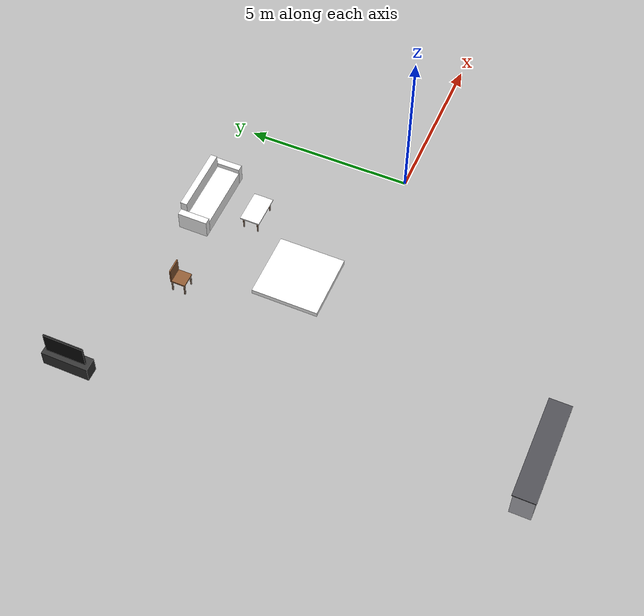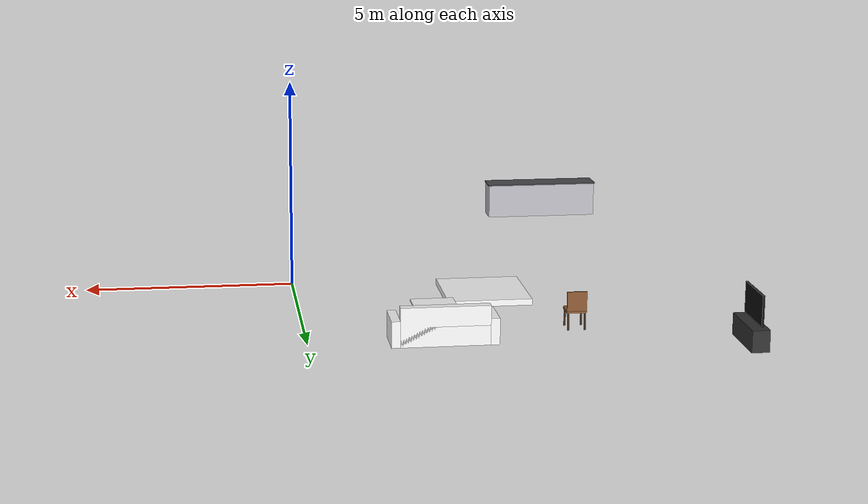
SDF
<sdf version="1.9">
 <world name="indoor_furniture">
  <model name="chair_3">
   <static>true</static>
   <link name="seat">
    <pose>-6.100 4.400 0.425 0 0 0.000</pose>
    <collision name="col"><geometry><box><size>0.450 0.450 0.050</size></box></geometry></collision>
    <visual name="vis">
     <geometry><box><size>0.450 0.450 0.050</size></box></geometry>
     <material>
      <ambient>0.55 0.35 0.2 1</ambient>
      <diffuse>0.55 0.35 0.2 1</diffuse>
      <specular>0.1 0.1 0.1 1</specular>
     </material>
    </visual>
   </link>
   <link name="leg0">
    <pose>-5.910 4.590 0.200 0 0 0.000</pose>
    <collision name="col"><geometry><box><size>0.040 0.040 0.400</size></box></geometry></collision>
    <visual name="vis">
     <geometry><box><size>0.040 0.040 0.400</size></box></geometry>
     <material>
      <ambient>0.25 0.18 0.12 1</ambient>
      <diffuse>0.25 0.18 0.12 1</diffuse>
      <specular>0.1 0.1 0.1 1</specular>
     </material>
    </visual>
   </link>
   <link name="leg1">
    <pose>-6.290 4.590 0.200 0 0 0.000</pose>
    <collision name="col"><geometry><box><size>0.040 0.040 0.400</size></box></geometry></collision>
    <visual name="vis">
     <geometry><box><size>0.040 0.040 0.400</size></box></geometry>
     <material>
      <ambient>0.25 0.18 0.12 1</ambient>
      <diffuse>0.25 0.18 0.12 1</diffuse>
      <specular>0.1 0.1 0.1 1</specular>
     </material>
    </visual>
   </link>
   <link name="leg2">
    <pose>-5.910 4.210 0.200 0 0 0.000</pose>
    <collision name="col"><geometry><box><size>0.040 0.040 0.400</size></box></geometry></collision>
    <visual name="vis">
     <geometry><box><size>0.040 0.040 0.400</size></box></geometry>
     <material>
      <ambient>0.25 0.18 0.12 1</ambient>
      <diffuse>0.25 0.18 0.12 1</diffuse>
      <specular>0.1 0.1 0.1 1</specular>
     </material>
    </visual>
   </link>
   <link name="leg3">
    <pose>-6.290 4.210 0.200 0 0 0.000</pose>
    <collision name="col"><geometry><box><size>0.040 0.040 0.400</size></box></geometry></collision>
    <visual name="vis">
     <geometry><box><size>0.040 0.040 0.400</size></box></geometry>
     <material>
      <ambient>0.25 0.18 0.12 1</ambient>
      <diffuse>0.25 0.18 0.12 1</diffuse>
      <specular>0.1 0.1 0.1 1</specular>
     </material>
    </visual>
   </link>
   <link name="back">
    <pose>-6.100 4.605 0.675 0 0 0.000</pose>
    <collision name="col"><geometry><box><size>0.450 0.040 0.450</size></box></geometry></collision>
    <visual name="vis">
     <geometry><box><size>0.450 0.040 0.450</size></box></geometry>
     <material>
      <ambient>0.55 0.35 0.2 1</ambient>
      <diffuse>0.55 0.35 0.2 1</diffuse>
      <specular>0.1 0.1 0.1 1</specular>
     </material>
    </visual>
   </link>
  </model>
  <model name="coffee_table">
   <static>true</static>
   <link name="top">
    <pose>-3.000 3.500 0.430 0 0 0.000</pose>
    <collision name="col"><geometry><box><size>1.000 0.600 0.040</size></box></geometry></collision>
    <visual name="vis">
     <geometry><box><size>1.000 0.600 0.040</size></box></geometry>
     <material>
      <diffuse>1 1 1 1</diffuse>
      <specular>0 0 0 1</specular>
      <pbr>
       <metal>
        <albedo_map>model://indoor_house/materials/textures/wood.png</albedo_map>
        <metalness>0</metalness>
        <roughness>1</roughness>
       </metal>
      </pbr>
     </material>
    </visual>
   </link>
   <link name="leg0">
    <pose>-2.580 3.720 0.205 0 0 0.000</pose>
    <collision name="col"><geometry><box><size>0.040 0.040 0.410</size></box></geometry></collision>
    <visual name="vis">
     <geometry><box><size>0.040 0.040 0.410</size></box></geometry>
     <material>
      <ambient>0.25 0.18 0.12 1</ambient>
      <diffuse>0.25 0.18 0.12 1</diffuse>
      <specular>0.1 0.1 0.1 1</specular>
     </material>
    </visual>
   </link>
   <link name="leg1">
    <pose>-3.420 3.720 0.205 0 0 0.000</pose>
    <collision name="col"><geometry><box><size>0.040 0.040 0.410</size></box></geometry></collision>
    <visual name="vis">
     <geometry><box><size>0.040 0.040 0.410</size></box></geometry>
     <material>
      <ambient>0.25 0.18 0.12 1</ambient>
      <diffuse>0.25 0.18 0.12 1</diffuse>
      <specular>0.1 0.1 0.1 1</specular>
     </material>
    </visual>
   </link>
   <link name="leg2">
    <pose>-2.580 3.280 0.205 0 0 0.000</pose>
    <collision name="col"><geometry><box><size>0.040 0.040 0.410</size></box></geometry></collision>
    <visual name="vis">
     <geometry><box><size>0.040 0.040 0.410</size></box></geometry>
     <material>
      <ambient>0.25 0.18 0.12 1</ambient>
      <diffuse>0.25 0.18 0.12 1</diffuse>
      <specular>0.1 0.1 0.1 1</specular>
     </material>
    </visual>
   </link>
   <link name="leg3">
    <pose>-3.420 3.280 0.205 0 0 0.000</pose>
    <collision name="col"><geometry><box><size>0.040 0.040 0.410</size></box></geometry></collision>
    <visual name="vis">
     <geometry><box><size>0.040 0.040 0.410</size></box></geometry>
     <material>
      <ambient>0.25 0.18 0.12 1</ambient>
      <diffuse>0.25 0.18 0.12 1</diffuse>
      <specular>0.1 0.1 0.1 1</specular>
     </material>
    </visual>
   </link>
  </model>
  <model name="couch">
   <static>true</static>
   <link name="seat">
    <pose>-3.000 5.000 0.225 0 0 0.000</pose>
    <collision name="col"><geometry><box><size>2.000 0.900 0.450</size></box></geometry></collision>
    <visual name="vis">
     <geometry><box><size>2.000 0.900 0.450</size></box></geometry>
     <material>
      <diffuse>1 1 1 1</diffuse>
      <specular>0 0 0 1</specular>
      <pbr>
       <metal>
        <albedo_map>model://indoor_house/materials/textures/fabric_blue.png</albedo_map>
        <metalness>0</metalness>
        <roughness>1</roughness>
       </metal>
      </pbr>
     </material>
    </visual>
   </link>
   <link name="backrest">
    <pose>-3.000 5.350 0.450 0 0 0.000</pose>
    <collision name="col"><geometry><box><size>2.000 0.200 0.900</size></box></geometry></collision>
    <visual name="vis">
     <geometry><box><size>2.000 0.200 0.900</size></box></geometry>
     <material>
      <diffuse>1 1 1 1</diffuse>
      <specular>0 0 0 1</specular>
      <pbr>
       <metal>
        <albedo_map>model://indoor_house/materials/textures/fabric_blue.png</albedo_map>
        <metalness>0</metalness>
        <roughness>1</roughness>
       </metal>
      </pbr>
     </material>
    </visual>
   </link>
   <link name="arm_l">
    <pose>-4.100 5.000 0.300 0 0 0.000</pose>
    <collision name="col"><geometry><box><size>0.200 0.900 0.600</size></box></geometry></collision>
    <visual name="vis">
     <geometry><box><size>0.200 0.900 0.600</size></box></geometry>
     <material>
      <diffuse>1 1 1 1</diffuse>
      <specular>0 0 0 1</specular>
      <pbr>
       <metal>
        <albedo_map>model://indoor_house/materials/textures/fabric_blue.png</albedo_map>
        <metalness>0</metalness>
        <roughness>1</roughness>
       </metal>
      </pbr>
     </material>
    </visual>
   </link>
   <link name="arm_r">
    <pose>-1.900 5.000 0.300 0 0 0.000</pose>
    <collision name="col"><geometry><box><size>0.200 0.900 0.600</size></box></geometry></collision>
    <visual name="vis">
     <geometry><box><size>0.200 0.900 0.600</size></box></geometry>
     <material>
      <diffuse>1 1 1 1</diffuse>
      <specular>0 0 0 1</specular>
      <pbr>
       <metal>
        <albedo_map>model://indoor_house/materials/textures/fabric_blue.png</albedo_map>
        <metalness>0</metalness>
        <roughness>1</roughness>
       </metal>
      </pbr>
     </material>
    </visual>
   </link>
  </model>
  <model name="step_platform">
   <static>true</static>
   <link name="slab">
    <pose>-4.500 1.500 0.075 0 0 0.000</pose>
    <collision name="col"><geometry><box><size>2.000 2.000 0.150</size></box></geometry></collision>
    <visual name="vis">
     <geometry><box><size>2.000 2.000 0.150</size></box></geometry>
     <material>
      <diffuse>1 1 1 1</diffuse>
      <specular>0 0 0 1</specular>
      <pbr>
       <metal>
        <albedo_map>model://indoor_house/materials/textures/concrete.png</albedo_map>
        <metalness>0</metalness>
        <roughness>1</roughness>
       </metal>
      </pbr>
     </material>
    </visual>
   </link>
  </model>
  <model name="tv_stand">
   <static>true</static>
   <link name="body">
    <pose>-9.700 6.000 0.250 0 0 0.000</pose>
    <collision name="col"><geometry><box><size>0.400 1.400 0.500</size></box></geometry></collision>
    <visual name="vis">
     <geometry><box><size>0.400 1.400 0.500</size></box></geometry>
     <material>
      <ambient>0.2 0.2 0.2 1</ambient>
      <diffuse>0.2 0.2 0.2 1</diffuse>
      <specular>0.1 0.1 0.1 1</specular>
     </material>
    </visual>
   </link>
   <link name="tv">
    <pose>-9.750 6.000 0.900 0 0 0.000</pose>
    <collision name="col"><geometry><box><size>0.050 1.200 0.700</size></box></geometry></collision>
    <visual name="vis">
     <geometry><box><size>0.050 1.200 0.700</size></box></geometry>
     <material>
      <ambient>0.05 0.05 0.05 1</ambient>
      <diffuse>0.05 0.05 0.05 1</diffuse>
      <specular>0.1 0.1 0.1 1</specular>
     </material>
    </visual>
   </link>
  </model>
  <model name="kitchen_counter">
   <static>true</static>
   <link name="body">
    <pose>-7.500 -6.600 0.450 0 0 0.000</pose>
    <collision name="col"><geometry><box><size>3.000 0.600 0.900</size></box></geometry></collision>
    <visual name="vis">
     <geometry><box><size>3.000 0.600 0.900</size></box></geometry>
     <material>
      <ambient>0.75 0.75 0.78 1</ambient>
      <diffuse>0.75 0.75 0.78 1</diffuse>
      <specular>0.1 0.1 0.1 1</specular>
     </material>
    </visual>
   </link>
   <link name="worktop">
    <pose>-7.500 -6.600 0.915 0 0 0.000</pose>
    <collision name="col"><geometry><box><size>3.050 0.650 0.030</size></box></geometry></collision>
    <visual name="vis">
     <geometry><box><size>3.050 0.650 0.030</size></box></geometry>
     <material>
      <ambient>0.3 0.3 0.32 1</ambient>
      <diffuse>0.3 0.3 0.32 1</diffuse>
      <specular>0.1 0.1 0.1 1</specular>
     </material>
    </visual>
   </link>
  </model>
 </world>
</sdf>
